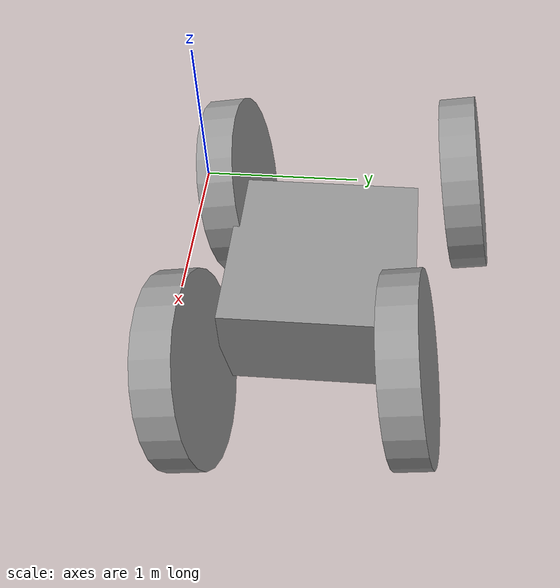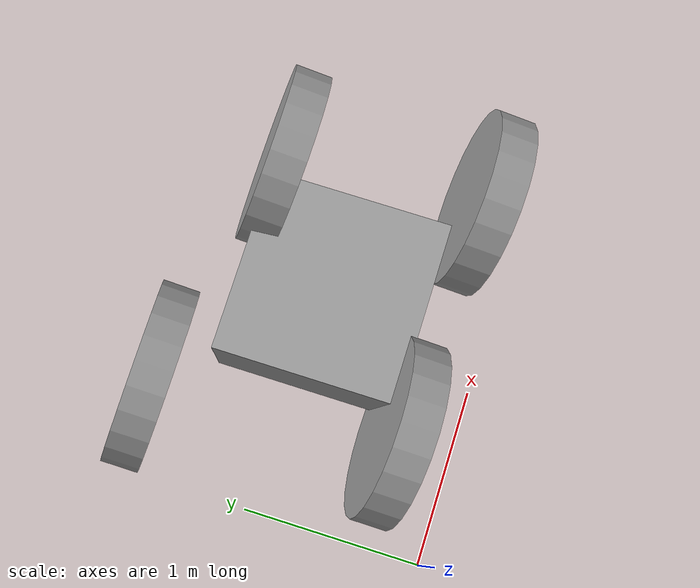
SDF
<?xml version='1.0'?>
<sdf version='1.6'>
  <model name='model'>
    <link name='link_1_clone_clone_0_clone'>
      <pose frame=''>1.93318 0.2624 0.5 1.7507 -0 0</pose>
      <inertial>
        <mass>1</mass>
        <inertia>
          <ixx>0.145833</ixx>
          <ixy>0</ixy>
          <ixz>0</ixz>
          <iyy>0.145833</iyy>
          <iyz>0</iyz>
          <izz>0.125</izz>
        </inertia>
        <pose frame=''>0 0 0 0 -0 0</pose>
      </inertial>
      <self_collide>0</self_collide>
      <kinematic>0</kinematic>
      <visual name='visual'>
        <pose frame=''>0 0 0 0 -0 0</pose>
        <geometry>
          <cylinder>
            <radius>0.5</radius>
            <length>0.2</length>
          </cylinder>
        </geometry>
        <material>
          <lighting>1</lighting>
          <script>
            <uri>file://media/materials/scripts/gazebo.material</uri>
            <name>Gazebo/Grey</name>
          </script>
          <shader type='pixel'>
            <normal_map>__default__</normal_map>
          </shader>
          <ambient>0.3 0.3 0.3 1</ambient>
          <diffuse>0.7 0.7 0.7 1</diffuse>
          <specular>0.01 0.01 0.01 1</specular>
          <emissive>0 0 0 1</emissive>
        </material>
        <transparency>0</transparency>
        <cast_shadows>1</cast_shadows>
      </visual>
      <collision name='collision'>
        <laser_retro>0</laser_retro>
        <max_contacts>10</max_contacts>
        <pose frame=''>0 0 0 0 -0 0</pose>
        <geometry>
          <cylinder>
            <radius>0.5</radius>
            <length>0.2</length>
          </cylinder>
        </geometry>
        <surface>
          <friction>
            <ode>
              <mu>1</mu>
              <mu2>1</mu2>
              <fdir1>0 0 0</fdir1>
              <slip1>0</slip1>
              <slip2>0</slip2>
            </ode>
            <torsional>
              <coefficient>1</coefficient>
              <patch_radius>0</patch_radius>
              <surface_radius>0</surface_radius>
              <use_patch_radius>1</use_patch_radius>
              <ode>
                <slip>0</slip>
              </ode>
            </torsional>
          </friction>
          <bounce>
            <restitution_coefficient>0</restitution_coefficient>
            <threshold>1e+06</threshold>
          </bounce>
          <contact>
            <collide_without_contact>0</collide_without_contact>
            <collide_without_contact_bitmask>1</collide_without_contact_bitmask>
            <collide_bitmask>1</collide_bitmask>
            <ode>
              <soft_cfm>0</soft_cfm>
              <soft_erp>0.2</soft_erp>
              <kp>1e+13</kp>
              <kd>1</kd>
              <max_vel>0.01</max_vel>
              <min_depth>0</min_depth>
            </ode>
            <bullet>
              <split_impulse>1</split_impulse>
              <split_impulse_penetration_threshold>-0.01</split_impulse_penetration_threshold>
              <soft_cfm>0</soft_cfm>
              <soft_erp>0.2</soft_erp>
              <kp>1e+13</kp>
              <kd>1</kd>
            </bullet>
          </contact>
        </surface>
      </collision>
    </link>
    <link name='link_1_clone_clone_1'>
      <pose frame=''>0.608024 0.340184 0.5 1.7507 -0 0</pose>
      <inertial>
        <mass>1</mass>
        <inertia>
          <ixx>0.145833</ixx>
          <ixy>0</ixy>
          <ixz>0</ixz>
          <iyy>0.145833</iyy>
          <iyz>0</iyz>
          <izz>0.125</izz>
        </inertia>
        <pose frame=''>0 0 0 0 -0 0</pose>
      </inertial>
      <self_collide>0</self_collide>
      <kinematic>0</kinematic>
      <visual name='visual'>
        <pose frame=''>0 0 0 0 -0 0</pose>
        <geometry>
          <cylinder>
            <radius>0.5</radius>
            <length>0.2</length>
          </cylinder>
        </geometry>
        <material>
          <lighting>1</lighting>
          <script>
            <uri>file://media/materials/scripts/gazebo.material</uri>
            <name>Gazebo/Grey</name>
          </script>
          <shader type='pixel'>
            <normal_map>__default__</normal_map>
          </shader>
          <ambient>0.3 0.3 0.3 1</ambient>
          <diffuse>0.7 0.7 0.7 1</diffuse>
          <specular>0.01 0.01 0.01 1</specular>
          <emissive>0 0 0 1</emissive>
        </material>
        <transparency>0</transparency>
        <cast_shadows>1</cast_shadows>
      </visual>
      <collision name='collision'>
        <laser_retro>0</laser_retro>
        <max_contacts>10</max_contacts>
        <pose frame=''>0 0 0 0 -0 0</pose>
        <geometry>
          <cylinder>
            <radius>0.5</radius>
            <length>0.2</length>
          </cylinder>
        </geometry>
        <surface>
          <friction>
            <ode>
              <mu>1</mu>
              <mu2>1</mu2>
              <fdir1>0 0 0</fdir1>
              <slip1>0</slip1>
              <slip2>0</slip2>
            </ode>
            <torsional>
              <coefficient>1</coefficient>
              <patch_radius>0</patch_radius>
              <surface_radius>0</surface_radius>
              <use_patch_radius>1</use_patch_radius>
              <ode>
                <slip>0</slip>
              </ode>
            </torsional>
          </friction>
          <bounce>
            <restitution_coefficient>0</restitution_coefficient>
            <threshold>1e+06</threshold>
          </bounce>
          <contact>
            <collide_without_contact>0</collide_without_contact>
            <collide_without_contact_bitmask>1</collide_without_contact_bitmask>
            <collide_bitmask>1</collide_bitmask>
            <ode>
              <soft_cfm>0</soft_cfm>
              <soft_erp>0.2</soft_erp>
              <kp>1e+13</kp>
              <kd>1</kd>
              <max_vel>0.01</max_vel>
              <min_depth>0</min_depth>
            </ode>
            <bullet>
              <split_impulse>1</split_impulse>
              <split_impulse_penetration_threshold>-0.01</split_impulse_penetration_threshold>
              <soft_cfm>0</soft_cfm>
              <soft_erp>0.2</soft_erp>
              <kp>1e+13</kp>
              <kd>1</kd>
            </bullet>
          </contact>
        </surface>
      </collision>
    </link>
    <link name='link_1_clone_clone_clone_0'>
      <pose frame=''>0.502899 1.65574 0.5 1.7507 -0 0</pose>
      <inertial>
        <mass>1</mass>
        <inertia>
          <ixx>0.145833</ixx>
          <ixy>0</ixy>
          <ixz>0</ixz>
          <iyy>0.145833</iyy>
          <iyz>0</iyz>
          <izz>0.125</izz>
        </inertia>
        <pose frame=''>0 0 0 0 -0 0</pose>
      </inertial>
      <self_collide>0</self_collide>
      <kinematic>0</kinematic>
      <visual name='visual'>
        <pose frame=''>0 0 0 0 -0 0</pose>
        <geometry>
          <cylinder>
            <radius>0.5</radius>
            <length>0.2</length>
          </cylinder>
        </geometry>
        <material>
          <lighting>1</lighting>
          <script>
            <uri>file://media/materials/scripts/gazebo.material</uri>
            <name>Gazebo/Grey</name>
          </script>
          <shader type='pixel'>
            <normal_map>__default__</normal_map>
          </shader>
          <ambient>0.3 0.3 0.3 1</ambient>
          <diffuse>0.7 0.7 0.7 1</diffuse>
          <specular>0.01 0.01 0.01 1</specular>
          <emissive>0 0 0 1</emissive>
        </material>
        <transparency>0</transparency>
        <cast_shadows>1</cast_shadows>
      </visual>
      <collision name='collision'>
        <laser_retro>0</laser_retro>
        <max_contacts>10</max_contacts>
        <pose frame=''>0 0 0 0 -0 0</pose>
        <geometry>
          <cylinder>
            <radius>0.5</radius>
            <length>0.2</length>
          </cylinder>
        </geometry>
        <surface>
          <friction>
            <ode>
              <mu>1</mu>
              <mu2>1</mu2>
              <fdir1>0 0 0</fdir1>
              <slip1>0</slip1>
              <slip2>0</slip2>
            </ode>
            <torsional>
              <coefficient>1</coefficient>
              <patch_radius>0</patch_radius>
              <surface_radius>0</surface_radius>
              <use_patch_radius>1</use_patch_radius>
              <ode>
                <slip>0</slip>
              </ode>
            </torsional>
          </friction>
          <bounce>
            <restitution_coefficient>0</restitution_coefficient>
            <threshold>1e+06</threshold>
          </bounce>
          <contact>
            <collide_without_contact>0</collide_without_contact>
            <collide_without_contact_bitmask>1</collide_without_contact_bitmask>
            <collide_bitmask>1</collide_bitmask>
            <ode>
              <soft_cfm>0</soft_cfm>
              <soft_erp>0.2</soft_erp>
              <kp>1e+13</kp>
              <kd>1</kd>
              <max_vel>0.01</max_vel>
              <min_depth>0</min_depth>
            </ode>
            <bullet>
              <split_impulse>1</split_impulse>
              <split_impulse_penetration_threshold>-0.01</split_impulse_penetration_threshold>
              <soft_cfm>0</soft_cfm>
              <soft_erp>0.2</soft_erp>
              <kp>1e+13</kp>
              <kd>1</kd>
            </bullet>
          </contact>
        </surface>
      </collision>
    </link>
    <link name='link_1_clone_clone_clone_1'>
      <pose frame=''>1.85225 1.36284 0.5 1.7507 -0 0</pose>
      <inertial>
        <mass>1</mass>
        <inertia>
          <ixx>0.145833</ixx>
          <ixy>0</ixy>
          <ixz>0</ixz>
          <iyy>0.145833</iyy>
          <iyz>0</iyz>
          <izz>0.125</izz>
        </inertia>
        <pose frame=''>0 0 0 0 -0 0</pose>
      </inertial>
      <self_collide>0</self_collide>
      <kinematic>0</kinematic>
      <visual name='visual'>
        <pose frame=''>0 0 0 0 -0 0</pose>
        <geometry>
          <cylinder>
            <radius>0.5</radius>
            <length>0.2</length>
          </cylinder>
        </geometry>
        <material>
          <lighting>1</lighting>
          <script>
            <uri>file://media/materials/scripts/gazebo.material</uri>
            <name>Gazebo/Grey</name>
          </script>
          <shader type='pixel'>
            <normal_map>__default__</normal_map>
          </shader>
          <ambient>0.3 0.3 0.3 1</ambient>
          <diffuse>0.7 0.7 0.7 1</diffuse>
          <specular>0.01 0.01 0.01 1</specular>
          <emissive>0 0 0 1</emissive>
        </material>
        <transparency>0</transparency>
        <cast_shadows>1</cast_shadows>
      </visual>
      <collision name='collision'>
        <laser_retro>0</laser_retro>
        <max_contacts>10</max_contacts>
        <pose frame=''>0 0 0 0 -0 0</pose>
        <geometry>
          <cylinder>
            <radius>0.5</radius>
            <length>0.2</length>
          </cylinder>
        </geometry>
        <surface>
          <friction>
            <ode>
              <mu>1</mu>
              <mu2>1</mu2>
              <fdir1>0 0 0</fdir1>
              <slip1>0</slip1>
              <slip2>0</slip2>
            </ode>
            <torsional>
              <coefficient>1</coefficient>
              <patch_radius>0</patch_radius>
              <surface_radius>0</surface_radius>
              <use_patch_radius>1</use_patch_radius>
              <ode>
                <slip>0</slip>
              </ode>
            </torsional>
          </friction>
          <bounce>
            <restitution_coefficient>0</restitution_coefficient>
            <threshold>1e+06</threshold>
          </bounce>
          <contact>
            <collide_without_contact>0</collide_without_contact>
            <collide_without_contact_bitmask>1</collide_without_contact_bitmask>
            <collide_bitmask>1</collide_bitmask>
            <ode>
              <soft_cfm>0</soft_cfm>
              <soft_erp>0.2</soft_erp>
              <kp>1e+13</kp>
              <kd>1</kd>
              <max_vel>0.01</max_vel>
              <min_depth>0</min_depth>
            </ode>
            <bullet>
              <split_impulse>1</split_impulse>
              <split_impulse_penetration_threshold>-0.01</split_impulse_penetration_threshold>
              <soft_cfm>0</soft_cfm>
              <soft_erp>0.2</soft_erp>
              <kp>1e+13</kp>
              <kd>1</kd>
            </bullet>
          </contact>
        </surface>
      </collision>
    </link>
    <link name='link_2'>
      <pose frame=''>1.21976 0.88005 0.400009 -0 -0 -0</pose>
      <inertial>
        <mass>1</mass>
        <inertia>
          <ixx>0.166667</ixx>
          <ixy>0</ixy>
          <ixz>0</ixz>
          <iyy>0.166667</iyy>
          <iyz>0</iyz>
          <izz>0.166667</izz>
        </inertia>
        <pose frame=''>0 0 0 0 -0 0</pose>
      </inertial>
      <self_collide>0</self_collide>
      <kinematic>0</kinematic>
      <visual name='visual'>
        <pose frame=''>0 0 0 0 -0 0</pose>
        <geometry>
          <box>
            <size>1 1 0.5</size>
          </box>
        </geometry>
        <material>
          <lighting>1</lighting>
          <script>
            <uri>file://media/materials/scripts/gazebo.material</uri>
            <name>Gazebo/Grey</name>
          </script>
          <shader type='pixel'>
            <normal_map>__default__</normal_map>
          </shader>
          <ambient>0.3 0.3 0.3 1</ambient>
          <diffuse>0.7 0.7 0.7 1</diffuse>
          <specular>0.01 0.01 0.01 1</specular>
          <emissive>0 0 0 1</emissive>
        </material>
        <transparency>0</transparency>
        <cast_shadows>1</cast_shadows>
      </visual>
      <collision name='collision'>
        <laser_retro>0</laser_retro>
        <max_contacts>10</max_contacts>
        <pose frame=''>0 0 0 0 -0 0</pose>
        <geometry>
          <box>
            <size>1 1 0.5</size>
          </box>
        </geometry>
        <surface>
          <friction>
            <ode>
              <mu>1</mu>
              <mu2>1</mu2>
              <fdir1>0 0 0</fdir1>
              <slip1>0</slip1>
              <slip2>0</slip2>
            </ode>
            <torsional>
              <coefficient>1</coefficient>
              <patch_radius>0</patch_radius>
              <surface_radius>0</surface_radius>
              <use_patch_radius>1</use_patch_radius>
              <ode>
                <slip>0</slip>
              </ode>
            </torsional>
          </friction>
          <bounce>
            <restitution_coefficient>0</restitution_coefficient>
            <threshold>1e+06</threshold>
          </bounce>
          <contact>
            <collide_without_contact>0</collide_without_contact>
            <collide_without_contact_bitmask>1</collide_without_contact_bitmask>
            <collide_bitmask>1</collide_bitmask>
            <ode>
              <soft_cfm>0</soft_cfm>
              <soft_erp>0.2</soft_erp>
              <kp>1e+13</kp>
              <kd>1</kd>
              <max_vel>0.01</max_vel>
              <min_depth>0</min_depth>
            </ode>
            <bullet>
              <split_impulse>1</split_impulse>
              <split_impulse_penetration_threshold>-0.01</split_impulse_penetration_threshold>
              <soft_cfm>0</soft_cfm>
              <soft_erp>0.2</soft_erp>
              <kp>1e+13</kp>
              <kd>1</kd>
            </bullet>
          </contact>
        </surface>
      </collision>
    </link>
    <joint name='link_1_clone_clone_0_clone_JOINT_6' type='revolute'>
      <parent>link_1_clone_clone_0_clone</parent>
      <child>link_2</child>
      <pose frame=''>0 0 0 0 -0 0</pose>
      <axis>
        <xyz>1 0 0</xyz>
        <use_parent_model_frame>0</use_parent_model_frame>
        <limit>
          <lower>-1.79769e+308</lower>
          <upper>1.79769e+308</upper>
          <effort>-1</effort>
          <velocity>-1</velocity>
        </limit>
        <dynamics>
          <spring_reference>0</spring_reference>
          <spring_stiffness>0</spring_stiffness>
          <damping>0</damping>
          <friction>0</friction>
        </dynamics>
      </axis>
      <physics>
        <ode>
          <limit>
            <cfm>0</cfm>
            <erp>0.2</erp>
          </limit>
          <suspension>
            <cfm>0</cfm>
            <erp>0.2</erp>
          </suspension>
        </ode>
      </physics>
    </joint>
    <joint name='link_1_clone_clone_1_JOINT_7' type='revolute'>
      <parent>link_1_clone_clone_1</parent>
      <child>link_2</child>
      <pose frame=''>0 0 0 0 -0 0</pose>
      <axis>
        <xyz>1 0 0</xyz>
        <use_parent_model_frame>0</use_parent_model_frame>
        <limit>
          <lower>-1.79769e+308</lower>
          <upper>1.79769e+308</upper>
          <effort>-1</effort>
          <velocity>-1</velocity>
        </limit>
        <dynamics>
          <spring_reference>0</spring_reference>
          <spring_stiffness>0</spring_stiffness>
          <damping>0</damping>
          <friction>0</friction>
        </dynamics>
      </axis>
      <physics>
        <ode>
          <limit>
            <cfm>0</cfm>
            <erp>0.2</erp>
          </limit>
          <suspension>
            <cfm>0</cfm>
            <erp>0.2</erp>
          </suspension>
        </ode>
      </physics>
    </joint>
    <joint name='link_1_clone_clone_clone_0_JOINT_8' type='revolute'>
      <parent>link_1_clone_clone_clone_0</parent>
      <child>link_2</child>
      <pose frame=''>0 0 0 0 -0 0</pose>
      <axis>
        <xyz>1 0 0</xyz>
        <use_parent_model_frame>0</use_parent_model_frame>
        <limit>
          <lower>-1.79769e+308</lower>
          <upper>1.79769e+308</upper>
          <effort>-1</effort>
          <velocity>-1</velocity>
        </limit>
        <dynamics>
          <spring_reference>0</spring_reference>
          <spring_stiffness>0</spring_stiffness>
          <damping>0</damping>
          <friction>0</friction>
        </dynamics>
      </axis>
      <physics>
        <ode>
          <limit>
            <cfm>0</cfm>
            <erp>0.2</erp>
          </limit>
          <suspension>
            <cfm>0</cfm>
            <erp>0.2</erp>
          </suspension>
        </ode>
      </physics>
    </joint>
    <joint name='link_2_JOINT_0' type='fixed'>
      <parent>link_2</parent>
      <child>link_1_clone_clone_clone_0</child>
      <pose frame=''>0 0 0 0 -0 0</pose>
      <physics>
        <ode>
          <limit>
            <cfm>0</cfm>
            <erp>0.2</erp>
          </limit>
          <suspension>
            <cfm>0</cfm>
            <erp>0.2</erp>
          </suspension>
        </ode>
      </physics>
    </joint>
    <joint name='link_2_JOINT_1' type='fixed'>
      <parent>link_2</parent>
      <child>link_1_clone_clone_1</child>
      <pose frame=''>0 0 0 0 -0 0</pose>
      <physics>
        <ode>
          <limit>
            <cfm>0</cfm>
            <erp>0.2</erp>
          </limit>
          <suspension>
            <cfm>0</cfm>
            <erp>0.2</erp>
          </suspension>
        </ode>
      </physics>
    </joint>
    <joint name='link_2_JOINT_2' type='fixed'>
      <parent>link_2</parent>
      <child>link_1_clone_clone_0_clone</child>
      <pose frame=''>0 0 0 0 -0 0</pose>
      <physics>
        <ode>
          <limit>
            <cfm>0</cfm>
            <erp>0.2</erp>
          </limit>
          <suspension>
            <cfm>0</cfm>
            <erp>0.2</erp>
          </suspension>
        </ode>
      </physics>
    </joint>
    <joint name='link_2_JOINT_3' type='fixed'>
      <parent>link_2</parent>
      <child>link_1_clone_clone_clone_1</child>
      <pose frame=''>0 0 0 0 -0 0</pose>
      <physics>
        <ode>
          <limit>
            <cfm>0</cfm>
            <erp>0.2</erp>
          </limit>
          <suspension>
            <cfm>0</cfm>
            <erp>0.2</erp>
          </suspension>
        </ode>
      </physics>
    </joint>
    <joint name='link_2_JOINT_9' type='revolute'>
      <parent>link_2</parent>
      <child>link_1_clone_clone_clone_1</child>
      <pose frame=''>0 0 0 0 -0 0</pose>
      <axis>
        <xyz>1 0 0</xyz>
        <use_parent_model_frame>0</use_parent_model_frame>
        <limit>
          <lower>-1.79769e+308</lower>
          <upper>1.79769e+308</upper>
          <effort>-1</effort>
          <velocity>-1</velocity>
        </limit>
        <dynamics>
          <spring_reference>0</spring_reference>
          <spring_stiffness>0</spring_stiffness>
          <damping>0</damping>
          <friction>0</friction>
        </dynamics>
      </axis>
      <physics>
        <ode>
          <limit>
            <cfm>0</cfm>
            <erp>0.2</erp>
          </limit>
          <suspension>
            <cfm>0</cfm>
            <erp>0.2</erp>
          </suspension>
        </ode>
      </physics>
    </joint>
    <static>0</static>
    <allow_auto_disable>1</allow_auto_disable>
  </model>
</sdf>
